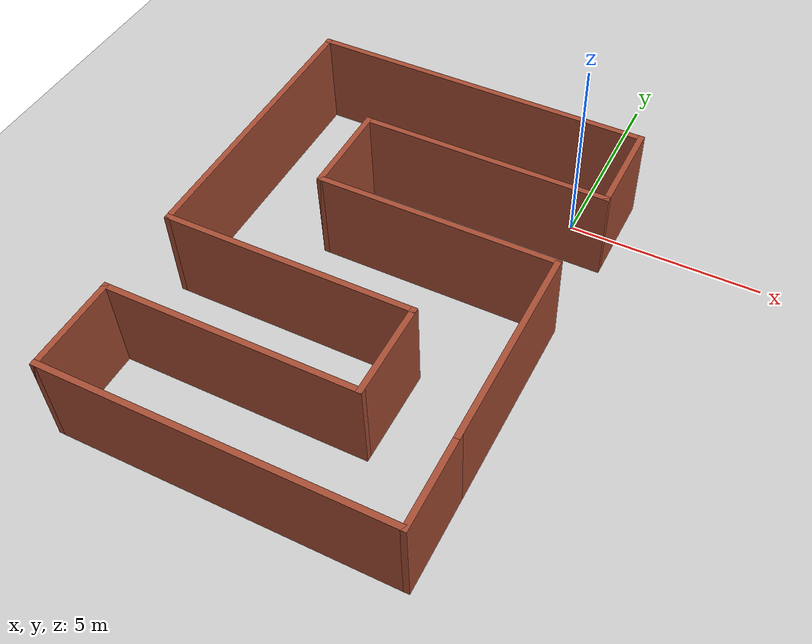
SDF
<sdf version="1.6">
 <world name="default">
  <light name="sun" type="directional">
   <pose>0 0 10 0 -0 0</pose>
   <diffuse>0.8 0.8 0.8 1</diffuse>
   <specular>0.2 0.2 0.2 1</specular>
   <attenuation>
    <range>1000</range>
    <constant>0.9</constant>
    <linear>0.01</linear>
    <quadratic>0.001</quadratic>
   </attenuation>
   <direction>-0.5 0.1 -0.9</direction>
  </light>
  <model name="ground_plane">
   <static>1</static>
   <link name="link">
    <collision name="collision">
     <geometry><plane><normal>0 0 1</normal><size>100 100</size></plane></geometry>
     <surface>
      <contact><collide_bitmask>65535</collide_bitmask></contact>
      <friction><ode><mu>100</mu><mu2>50</mu2></ode></friction>
     </surface>
    </collision>
    <visual name="visual">
     <cast_shadows>0</cast_shadows>
     <geometry><plane><normal>0 0 1</normal><size>100 100</size></plane></geometry>
     <material>
      <script><uri>file://media/materials/scripts/gazebo.material</uri><name>Gazebo/Grey</name></script>
     </material>
    </visual>
   </link>
  </model>
  <gravity>0 0 -9.8</gravity>
  <magnetic_field>6e-06 2.3e-05 -4.2e-05</magnetic_field>
  <atmosphere type="adiabatic"/>
  <physics name="default_physics" default="0" type="ode">
   <max_step_size>0.001</max_step_size>
   <real_time_factor>1</real_time_factor>
   <real_time_update_rate>1000</real_time_update_rate>
  </physics>
  <scene><ambient>0.4 0.4 0.4 1</ambient><background>0.7 0.7 0.7 1</background><shadows>1</shadows></scene>
  <spherical_coordinates>
   <surface_model>EARTH_WGS84</surface_model>
   <latitude_deg>0</latitude_deg>
   <longitude_deg>0</longitude_deg>
   <elevation>0</elevation>
   <heading_deg>0</heading_deg>
  </spherical_coordinates>
  <model name="Untitled5">
   <pose>-3.30842 -4.7615 0 0 -0 0</pose>
   <link name="Wall_0">
    <collision name="Wall_0_Collision">
     <geometry><box><size>9 0.15 2.5</size></box></geometry>
     <pose>0 0 1.25 0 -0 0</pose>
    </collision>
    <visual name="Wall_0_Visual">
     <pose>0 0 1.25 0 -0 0</pose>
     <geometry><box><size>9 0.15 2.5</size></box></geometry>
     <material>
      <script><uri>file://media/materials/scripts/gazebo.material</uri><name>Gazebo/Bricks</name></script>
      <ambient>1 1 1 1</ambient>
     </material>
     <meta><layer>0</layer></meta>
    </visual>
    <pose>0 6.025 0 0 -0 3.14159</pose>
   </link>
   <link name="Wall_1">
    <collision name="Wall_1_Collision">
     <geometry><box><size>7.5 0.15 2.5</size></box></geometry>
     <pose>0 0 1.25 0 -0 0</pose>
    </collision>
    <visual name="Wall_1_Visual">
     <pose>0 0 1.25 0 -0 0</pose>
     <geometry><box><size>7.5 0.15 2.5</size></box></geometry>
     <material>
      <script><uri>file://media/materials/scripts/gazebo.material</uri><name>Gazebo/Bricks</name></script>
      <ambient>1 1 1 1</ambient>
     </material>
     <meta><layer>0</layer></meta>
    </visual>
    <pose>-4.425 2.35 0 0 0 -1.5708</pose>
   </link>
   <link name="Wall_12">
    <collision name="Wall_12_Collision">
     <geometry><box><size>2.5 0.15 2.5</size></box></geometry>
     <pose>0 0 1.25 0 -0 0</pose>
    </collision>
    <visual name="Wall_12_Visual">
     <pose>0 0 1.25 0 -0 0</pose>
     <geometry><box><size>2.5 0.15 2.5</size></box></geometry>
     <material>
      <script><uri>file://media/materials/scripts/gazebo.material</uri><name>Gazebo/Bricks</name></script>
      <ambient>1 1 1 1</ambient>
     </material>
     <meta><layer>0</layer></meta>
    </visual>
    <pose>1.925 -2.5 0 0 0 -1.5708</pose>
   </link>
   <link name="Wall_13">
    <collision name="Wall_13_Collision">
     <geometry><box><size>6.5 0.15 2.5</size></box></geometry>
     <pose>0 0 1.25 0 -0 0</pose>
    </collision>
    <visual name="Wall_13_Visual">
     <pose>0 0 1.25 0 -0 0</pose>
     <geometry><box><size>6.5 0.15 2.5</size></box></geometry>
     <material>
      <script><uri>file://media/materials/scripts/gazebo.material</uri><name>Gazebo/Bricks</name></script>
      <ambient>1 1 1 1</ambient>
     </material>
     <meta><layer>0</layer></meta>
    </visual>
    <pose>-1.25 -3.675 0 0 -0 3.14159</pose>
   </link>
   <link name="Wall_15">
    <collision name="Wall_15_Collision">
     <geometry><box><size>2.5 0.15 2.5</size></box></geometry>
     <pose>0 0 1.25 0 -0 0</pose>
    </collision>
    <visual name="Wall_15_Visual">
     <pose>0 0 1.25 0 -0 0</pose>
     <geometry><box><size>2.5 0.15 2.5</size></box></geometry>
     <material>
      <script><uri>file://media/materials/scripts/gazebo.material</uri><name>Gazebo/Bricks</name></script>
      <ambient>1 1 1 1</ambient>
     </material>
     <meta><layer>0</layer></meta>
    </visual>
    <pose>-4.425 -4.85 0 0 0 -1.5708</pose>
   </link>
   <link name="Wall_16">
    <collision name="Wall_16_Collision">
     <geometry><box><size>8.75 0.15 2.5</size></box></geometry>
     <pose>0 0 1.25 0 -0 0</pose>
    </collision>
    <visual name="Wall_16_Visual">
     <pose>0 0 1.25 0 -0 0</pose>
     <geometry><box><size>8.75 0.15 2.5</size></box></geometry>
     <material>
      <script><uri>file://media/materials/scripts/gazebo.material</uri><name>Gazebo/Bricks</name></script>
      <ambient>1 1 1 1</ambient>
     </material>
     <meta><layer>0</layer></meta>
    </visual>
    <pose>-0.125 -6.025 0 0 -0 0</pose>
   </link>
   <link name="Wall_17">
    <collision name="Wall_17_Collision">
     <geometry><box><size>2.4 0.15 2.5</size></box></geometry>
     <pose>0 0 1.25 0 -0 0</pose>
    </collision>
    <visual name="Wall_17_Visual">
     <pose>0 0 1.25 0 -0 0</pose>
     <geometry><box><size>2.4 0.15 2.5</size></box></geometry>
     <material>
      <script><uri>file://media/materials/scripts/gazebo.material</uri><name>Gazebo/Bricks</name></script>
      <ambient>1 1 1 1</ambient>
     </material>
     <meta><layer>0</layer></meta>
    </visual>
    <pose>4.175 -4.9 0 0 -0 1.5708</pose>
   </link>
   <link name="Wall_2">
    <collision name="Wall_2_Collision">
     <geometry><box><size>6.5 0.15 2.5</size></box></geometry>
     <pose>0 0 1.25 0 -0 0</pose>
    </collision>
    <visual name="Wall_2_Visual">
     <pose>0 0 1.25 0 -0 0</pose>
     <geometry><box><size>6.5 0.15 2.5</size></box></geometry>
     <material>
      <script><uri>file://media/materials/scripts/gazebo.material</uri><name>Gazebo/Bricks</name></script>
      <ambient>1 1 1 1</ambient>
     </material>
     <meta><layer>0</layer></meta>
    </visual>
    <pose>-1.25 -1.325 0 0 -0 0</pose>
   </link>
   <link name="Wall_4">
    <collision name="Wall_4_Collision">
     <geometry><box><size>2.5 0.15 2.5</size></box></geometry>
     <pose>0 0 1.25 0 -0 0</pose>
    </collision>
    <visual name="Wall_4_Visual">
     <pose>0 0 1.25 0 -0 0</pose>
     <geometry><box><size>2.5 0.15 2.5</size></box></geometry>
     <material>
      <script><uri>file://media/materials/scripts/gazebo.material</uri><name>Gazebo/Bricks</name></script>
      <ambient>1 1 1 1</ambient>
     </material>
     <meta><layer>0</layer></meta>
    </visual>
    <pose>4.425 4.85 0 0 0 -1.5708</pose>
   </link>
   <link name="Wall_5">
    <collision name="Wall_5_Collision">
     <geometry><box><size>6.5 0.15 2.5</size></box></geometry>
     <pose>0 0 1.25 0 -0 0</pose>
    </collision>
    <visual name="Wall_5_Visual">
     <pose>0 0 1.25 0 -0 0</pose>
     <geometry><box><size>6.5 0.15 2.5</size></box></geometry>
     <material>
      <script><uri>file://media/materials/scripts/gazebo.material</uri><name>Gazebo/Bricks</name></script>
      <ambient>1 1 1 1</ambient>
     </material>
     <meta><layer>0</layer></meta>
    </visual>
    <pose>1.25 3.675 0 0 -0 3.14159</pose>
   </link>
   <link name="Wall_6">
    <collision name="Wall_6_Collision">
     <geometry><box><size>2.5 0.15 2.5</size></box></geometry>
     <pose>0 0 1.25 0 -0 0</pose>
    </collision>
    <visual name="Wall_6_Visual">
     <pose>0 0 1.25 0 -0 0</pose>
     <geometry><box><size>2.5 0.15 2.5</size></box></geometry>
     <material>
      <script><uri>file://media/materials/scripts/gazebo.material</uri><name>Gazebo/Bricks</name></script>
      <ambient>1 1 1 1</ambient>
     </material>
     <meta><layer>0</layer></meta>
    </visual>
    <pose>-1.925 2.5 0 0 0 -1.5708</pose>
   </link>
   <link name="Wall_7">
    <collision name="Wall_7_Collision">
     <geometry><box><size>6.25 0.15 2.5</size></box></geometry>
     <pose>0 0 1.25 0 -0 0</pose>
    </collision>
    <visual name="Wall_7_Visual">
     <pose>0 0 1.25 0 -0 0</pose>
     <geometry><box><size>6.25 0.15 2.5</size></box></geometry>
     <material>
      <script><uri>file://media/materials/scripts/gazebo.material</uri><name>Gazebo/Bricks</name></script>
      <ambient>1 1 1 1</ambient>
     </material>
     <meta><layer>0</layer></meta>
    </visual>
    <pose>1.125 1.325 0 0 -0 0</pose>
   </link>
   <link name="Wall_8">
    <collision name="Wall_8_Collision">
     <geometry><box><size>5.25 0.15 2.5</size></box></geometry>
     <pose>0 0 1.25 0 -0 0</pose>
    </collision>
    <visual name="Wall_8_Visual">
     <pose>0 0 1.25 0 -0 0</pose>
     <geometry><box><size>5.25 0.15 2.5</size></box></geometry>
     <material>
      <script><uri>file://media/materials/scripts/gazebo.material</uri><name>Gazebo/Bricks</name></script>
      <ambient>1 1 1 1</ambient>
     </material>
     <meta><layer>0</layer></meta>
    </visual>
    <pose>4.175 -1.225 0 0 0 -1.5708</pose>
   </link>
   <static>1</static>
  </model>
 </world>
</sdf>
